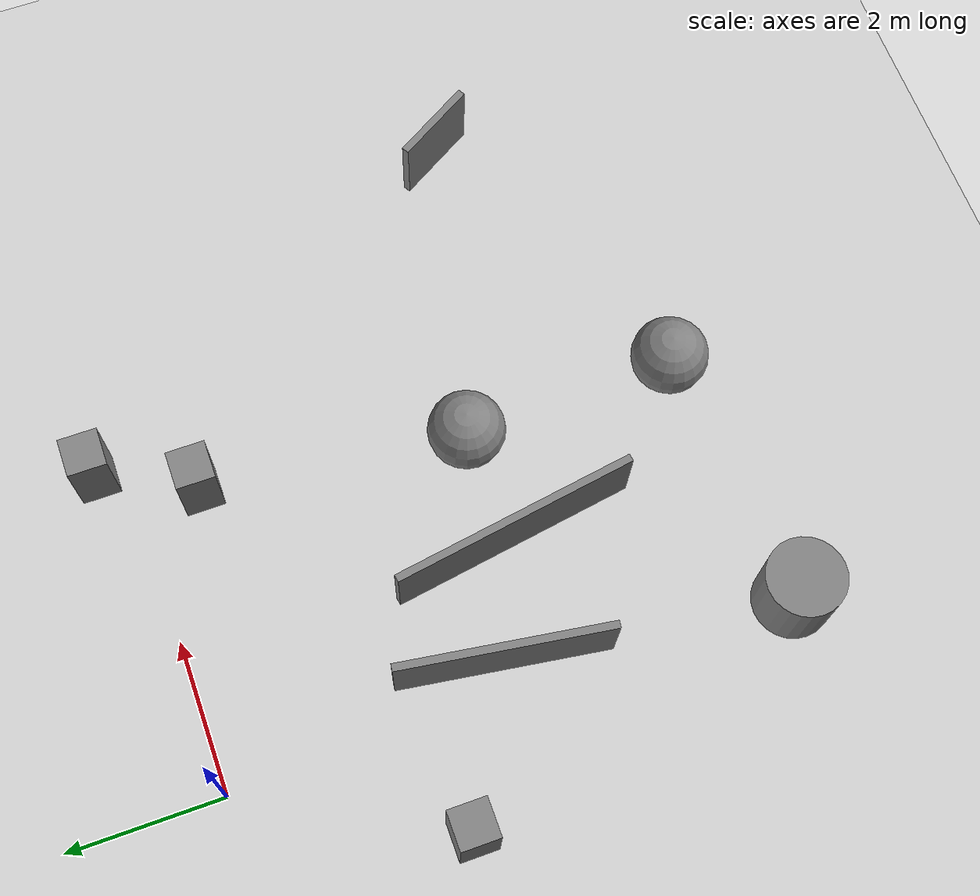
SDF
<?xml version='1.0' encoding='utf-8'?>
<sdf version="1.9">
  <world name="hfsa">
    <physics name="1ms" type="dart">
      <max_step_size>0.001</max_step_size>
      <real_time_factor>1</real_time_factor>
      <real_time_update_rate>1000</real_time_update_rate>
    </physics>
    <plugin name="gz::sim::systems::Physics" filename="gz-sim-physics-system" />
    <plugin name="gz::sim::systems::UserCommands" filename="gz-sim-user-commands-system" />
    <plugin name="gz::sim::systems::SceneBroadcaster" filename="gz-sim-scene-broadcaster-system" />
    <plugin name="gz::sim::systems::Contact" filename="gz-sim-contact-system" />
    <plugin name="gz::sim::systems::Sensors" filename="gz-sim-sensors-system">
      <render_engine>ogre2</render_engine>
    </plugin>
    <gravity>0 0 -9.8</gravity>
    <magnetic_field>6e-06 2.3e-05 -4.2e-05</magnetic_field>
    <atmosphere type="adiabatic" />
    <scene>
      <ambient>0.4 0.4 0.4 1</ambient>
      <background>0.7 0.7 0.7 1</background>
      <shadows>true</shadows>
    </scene>
    <model name="ground_plane">
      <static>true</static>
      <link name="link">
        <collision name="collision">
          <geometry>
            <plane>
              <normal>0 0 1</normal>
              <size>100 100</size>
            </plane>
          </geometry>
          <surface>
            <friction>
              <ode />
            </friction>
            <bounce />
            <contact />
          </surface>
        </collision>
        <visual name="visual">
          <geometry>
            <plane>
              <normal>0 0 1</normal>
              <size>100 100</size>
            </plane>
          </geometry>
          <material>
            <ambient>0.8 0.8 0.8 1</ambient>
            <diffuse>0.8 0.8 0.8 1</diffuse>
            <specular>0.8 0.8 0.8 1</specular>
          </material>
        </visual>
        <pose>0 0 0 0 -0 0</pose>
        <inertial>
          <pose>0 0 0 0 -0 0</pose>
          <mass>1</mass>
          <inertia>
            <ixx>1</ixx>
            <ixy>0</ixy>
            <ixz>0</ixz>
            <iyy>1</iyy>
            <iyz>0</iyz>
            <izz>1</izz>
          </inertia>
        </inertial>
        <enable_wind>false</enable_wind>
      </link>
      <pose>0 0 0 0 -0 0</pose>
      <self_collide>false</self_collide>
    </model>
    <light name="sun" type="directional">
      <pose>0 0 10 0 -0 0</pose>
      <cast_shadows>true</cast_shadows>
      <intensity>1</intensity>
      <direction>-0.5 0.1 -0.9</direction>
      <diffuse>0.8 0.8 0.8 1</diffuse>
      <specular>0.2 0.2 0.2 1</specular>
      <attenuation>
        <range>1000</range>
        <linear>0.01</linear>
        <constant>0.90000000000000002</constant>
        <quadratic>0.001</quadratic>
      </attenuation>
      <spot>
        <inner_angle>0</inner_angle>
        <outer_angle>0</outer_angle>
        <falloff>0</falloff>
      </spot>
    </light>
  <model name="wall_1">
            <static>true</static>
            <type>wall</type>
            <pose>1.850000 -4.300000 0.500000 0 0 1.725793</pose>
            <link name="link">
                <collision name="collision">
                    <geometry><box><size>3.238827 0.100000 1.000000</size></box></geometry>
                </collision>
                <visual name="visual">
                    <geometry><box><size>3.238827 0.100000 1.000000</size></box></geometry>
                    <material>
                        <diffuse>0.5 0.5 0.5 1</diffuse>
                    </material>
                </visual></link></model><model name="wall_2">
            <static>true</static>
            <type>wall</type>
            <pose>0.400000 -3.650000 0.500000 0 0 -1.717875</pose>
            <link name="link">
                <collision name="collision">
                    <geometry><box><size>2.729469 0.100000 1.000000</size></box></geometry>
                </collision>
                <visual name="visual">
                    <geometry><box><size>2.729469 0.100000 1.000000</size></box></geometry>
                    <material>
                        <diffuse>0.5 0.5 0.5 1</diffuse>
                    </material>
                </visual></link></model><model name="wall_3">
            <static>true</static>
            <type>wall</type>
            <pose>7.400000 -5.200000 0.500000 0 0 -1.030377</pose>
            <link name="link">
                <collision name="collision">
                    <geometry><box><size>1.166190 0.100000 1.000000</size></box></geometry>
                </collision>
                <visual name="visual">
                    <geometry><box><size>1.166190 0.100000 1.000000</size></box></geometry>
                    <material>
                        <diffuse>0.5 0.5 0.5 1</diffuse>
                    </material>
                </visual></link></model><model name="sphere_1">
            <static>true</static>
            <type>sphere</type>
            <pose>3.300000 -4.200000 0.500000 0 0 0</pose>
            <link name="link">
                <collision name="collision">
                    <geometry><sphere><radius>0.500000</radius></sphere></geometry>
                </collision>
                <visual name="visual">
                    <geometry><sphere><radius>0.500000</radius></sphere></geometry>
                    <material>
                        <diffuse>0.5 0.5 0.5 1</diffuse>
                    </material>
                </visual></link></model><model name="sphere_2">
            <static>true</static>
            <type>sphere</type>
            <pose>3.400000 -7.000000 0.500000 0 0 0</pose>
            <link name="link">
                <collision name="collision">
                    <geometry><sphere><radius>0.500000</radius></sphere></geometry>
                </collision>
                <visual name="visual">
                    <geometry><sphere><radius>0.500000</radius></sphere></geometry>
                    <material>
                        <diffuse>0.5 0.5 0.5 1</diffuse>
                    </material>
                </visual></link></model><model name="cylinder_1">
            <static>true</static>
            <type>cylinder</type>
            <pose>0.000000 -7.300000 0.500000 0 0 0</pose>
            <link name="link">
                <collision name="collision">
                    <geometry><cylinder><radius>0.500000</radius><length>1.000000</length></cylinder></geometry>
                </collision>
                <visual name="visual">
                    <geometry><cylinder><radius>0.500000</radius><length>1.000000</length></cylinder></geometry>
                    <material>
                        <diffuse>0.5 0.5 0.5 1</diffuse>
                    </material>
                </visual></link></model><model name="box_1">
            <static>true</static>
            <type>box</type>
            <pose>-1.400000 -2.600000 0.500000 0 0 0</pose>
            <link name="link">
                <collision name="collision">
                    <geometry><box><size>0.500000 0.500000 1.000000</size></box></geometry>
                </collision>
                <visual name="visual">
                    <geometry><box><size>0.500000 0.500000 1.000000</size></box></geometry>
                    <material>
                        <diffuse>0.5 0.5 0.5 1</diffuse>
                    </material>
                </visual></link></model><model name="box_2">
            <static>true</static>
            <type>box</type>
            <pose>3.800000 -0.800000 0.500000 0 0 0</pose>
            <link name="link">
                <collision name="collision">
                    <geometry><box><size>0.500000 0.500000 1.000000</size></box></geometry>
                </collision>
                <visual name="visual">
                    <geometry><box><size>0.500000 0.500000 1.000000</size></box></geometry>
                    <material>
                        <diffuse>0.5 0.5 0.5 1</diffuse>
                    </material>
                </visual></link></model><model name="box_3">
            <static>true</static>
            <type>box</type>
            <pose>4.400000 0.400000 0.500000 0 0 0</pose>
            <link name="link">
                <collision name="collision">
                    <geometry><box><size>0.500000 0.500000 1.000000</size></box></geometry>
                </collision>
                <visual name="visual">
                    <geometry><box><size>0.500000 0.500000 1.000000</size></box></geometry>
                    <material>
                        <diffuse>0.5 0.5 0.5 1</diffuse>
                    </material>
                </visual></link></model></world>
</sdf>
